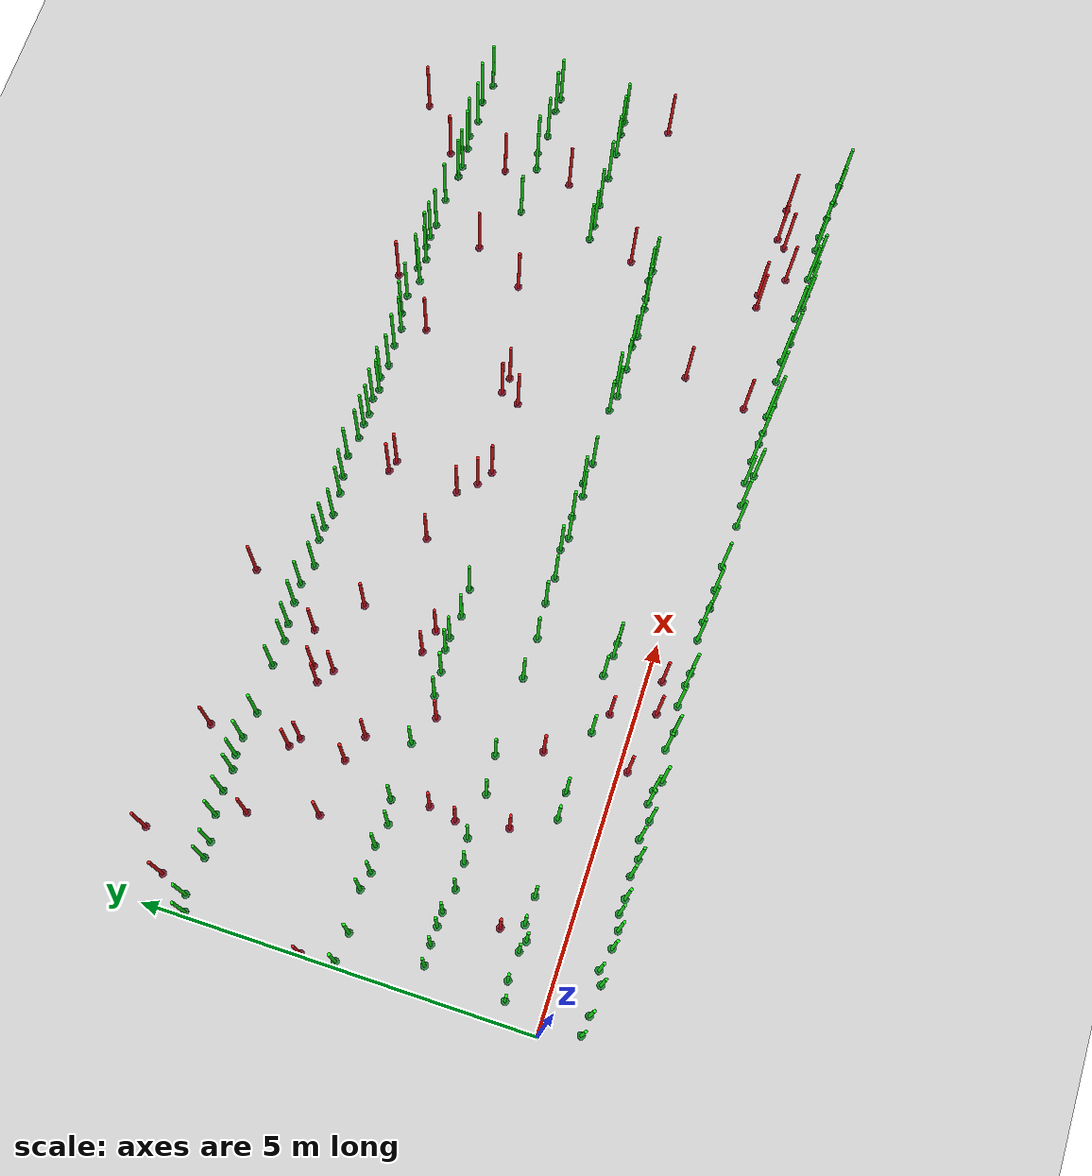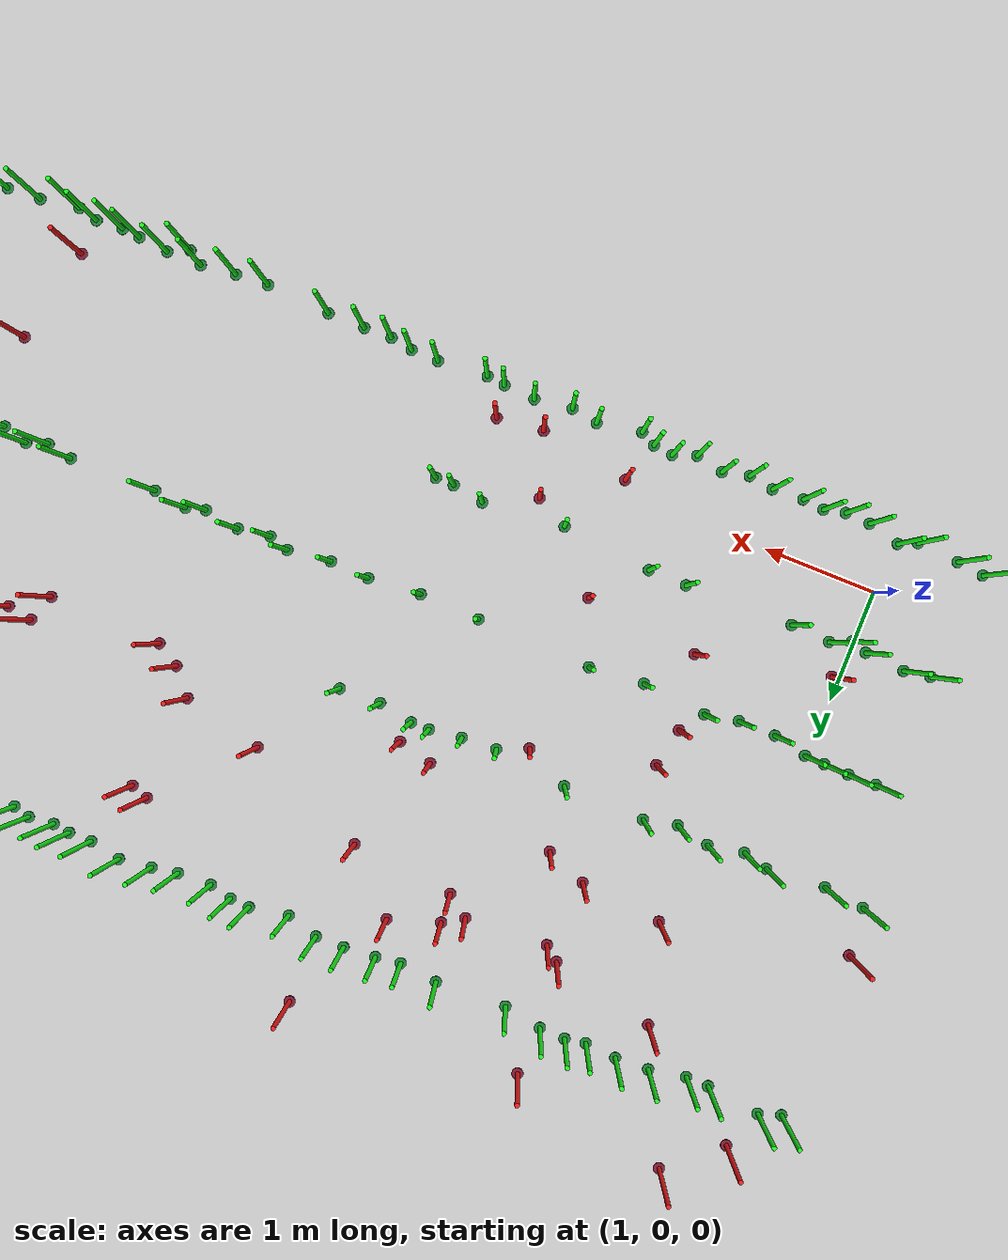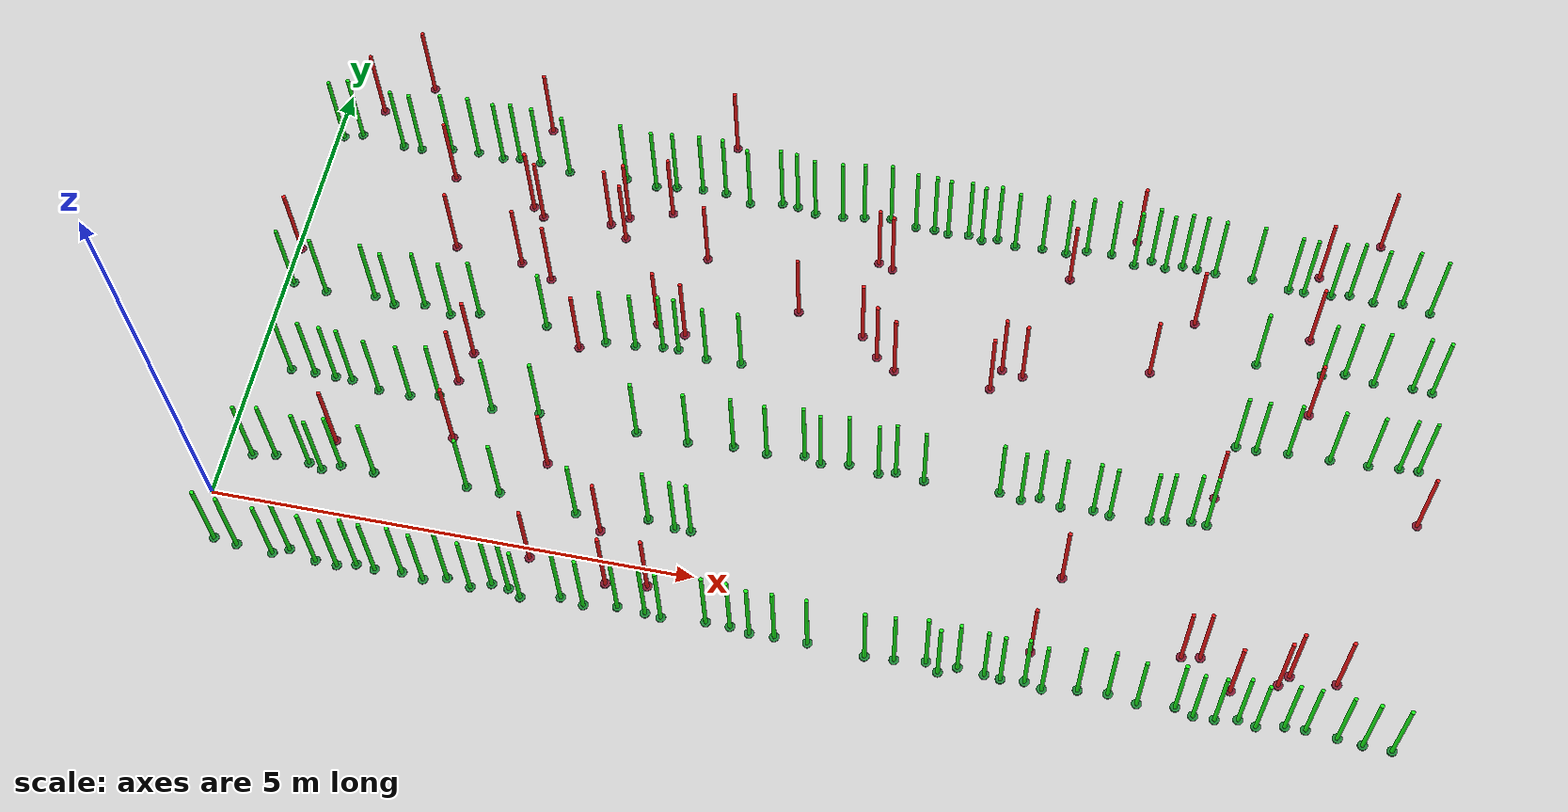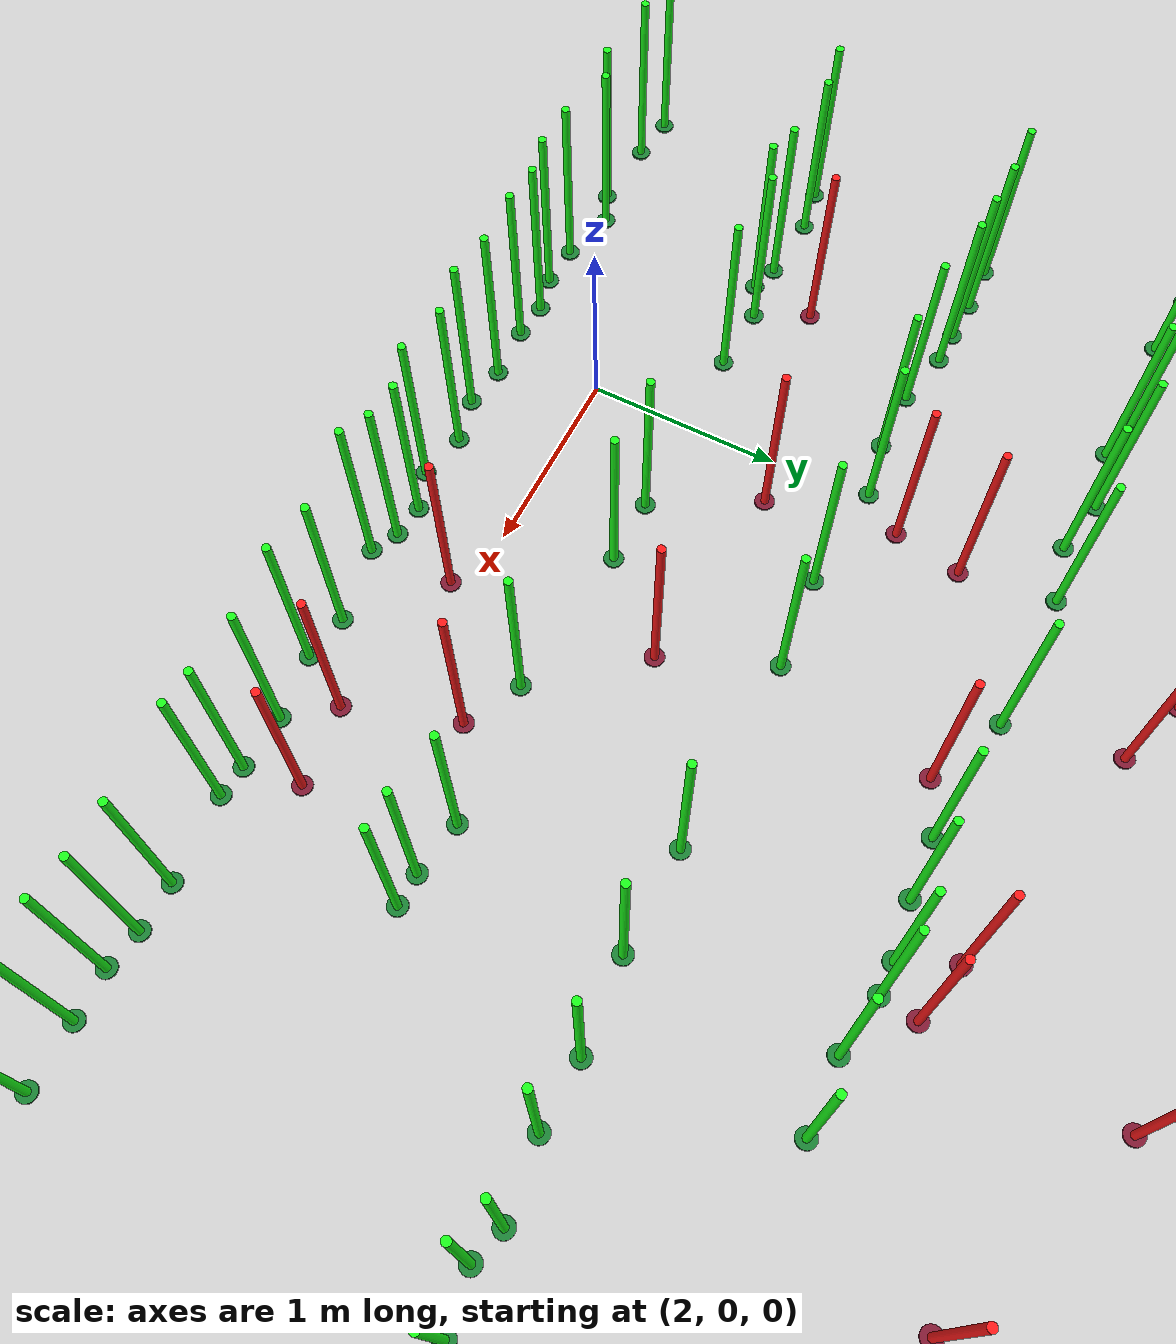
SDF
<sdf version="1.4">
 <world name="default">
  <include><uri>model://ground_plane</uri></include>
  <include><uri>model://sun</uri></include>
  <model name="plantgreen_0_3">
   <include><uri>model://plantgreen</uri></include>
   <pose>8.39856245610971 -0.4807476662383594 0 0 0 0</pose>
  </model>
  <model name="plantgreen_0_4">
   <include><uri>model://plantgreen</uri></include>
   <pose>4.777953573985738 -0.49077117577808715 0 0 0 0</pose>
  </model>
  <model name="plantgreen_0_8">
   <include><uri>model://plantgreen</uri></include>
   <pose>5.6681007058606765 -0.49095150510172536 0 0 0 0</pose>
  </model>
  <model name="plantgreen_0_9">
   <include><uri>model://plantgreen</uri></include>
   <pose>3.756947308085751 -0.4669846699011406 0 0 0 0</pose>
  </model>
  <model name="plantgreen_0_11">
   <include><uri>model://plantgreen</uri></include>
   <pose>1.2553774150021098 -0.5410058900769742 0 0 0 0</pose>
  </model>
  <model name="plantgreen_0_12">
   <include><uri>model://plantgreen</uri></include>
   <pose>0.184738686686578 -0.4900534193792378 0 0 0 0</pose>
  </model>
  <model name="plantgreen_0_15">
   <include><uri>model://plantgreen</uri></include>
   <pose>3.0505982982683975 -0.4554522030174123 0 0 0 0</pose>
  </model>
  <model name="plantgreen_0_20">
   <include><uri>model://plantgreen</uri></include>
   <pose>10.928086680414772 -0.4640705573655014 0 0 0 0</pose>
  </model>
  <model name="plantgreen_0_21">
   <include><uri>model://plantgreen</uri></include>
   <pose>4.330352886810834 -0.4575994621631966 0 0 0 0</pose>
  </model>
  <model name="plantgreen_0_22">
   <include><uri>model://plantgreen</uri></include>
   <pose>11.963182784833304 -0.5190679712958624 0 0 0 0</pose>
  </model>
  <model name="plantgreen_0_23">
   <include><uri>model://plantgreen</uri></include>
   <pose>6.248799093181534 -0.4829120567881093 0 0 0 0</pose>
  </model>
  <model name="plantgreen_0_24">
   <include><uri>model://plantgreen</uri></include>
   <pose>7.424294728396721 -0.458322404561467 0 0 0 0</pose>
  </model>
  <model name="plantgreen_0_25">
   <include><uri>model://plantgreen</uri></include>
   <pose>2.3648847800552737 -0.536225432818001 0 0 0 0</pose>
  </model>
  <model name="plantgreen_0_26">
   <include><uri>model://plantgreen</uri></include>
   <pose>5.222326706566874 -0.4547527973212203 0 0 0 0</pose>
  </model>
  <model name="plantgreen_0_27">
   <include><uri>model://plantgreen</uri></include>
   <pose>0.9660024674559231 -0.46920312247077667 0 0 0 0</pose>
  </model>
  <model name="plantgreen_0_29">
   <include><uri>model://plantgreen</uri></include>
   <pose>2.8494490534128225 -0.5298505835202784 0 0 0 0</pose>
  </model>
  <model name="plantgreen_0_30">
   <include><uri>model://plantgreen</uri></include>
   <pose>3.3627077185650527 -0.5403709632884144 0 0 0 0</pose>
  </model>
  <model name="plantgreen_0_32">
   <include><uri>model://plantgreen</uri></include>
   <pose>8.916906849624691 -0.4704890661441509 0 0 0 0</pose>
  </model>
  <model name="plantgreen_0_34">
   <include><uri>model://plantgreen</uri></include>
   <pose>1.6691414771721673 -0.5040041812483311 0 0 0 0</pose>
  </model>
  <model name="plantgreen_0_37">
   <include><uri>model://plantgreen</uri></include>
   <pose>1.4798980344004815 -0.5497533237693103 0 0 0 0</pose>
  </model>
  <model name="plantgreen_0_42">
   <include><uri>model://plantgreen</uri></include>
   <pose>0.42869831111589374 -0.5176122068429523 0 0 0 0</pose>
  </model>
  <model name="plantgreen_0_43">
   <include><uri>model://plantgreen</uri></include>
   <pose>8.57407877382872 -0.525318475388357 0 0 0 0</pose>
  </model>
  <model name="plantgreen_0_44">
   <include><uri>model://plantgreen</uri></include>
   <pose>11.680260472352233 -0.5133142259705469 0 0 0 0</pose>
  </model>
  <model name="plantgreen_0_47">
   <include><uri>model://plantgreen</uri></include>
   <pose>9.497905810052366 -0.5021001670326196 0 0 0 0</pose>
  </model>
  <model name="plantgreen_0_48">
   <include><uri>model://plantgreen</uri></include>
   <pose>7.734740965060566 -0.457814429661794 0 0 0 0</pose>
  </model>
  <model name="plantgreen_0_49">
   <include><uri>model://plantgreen</uri></include>
   <pose>2.1409984198528047 -0.5029124128781308 0 0 0 0</pose>
  </model>
  <model name="plantgreen_0_51">
   <include><uri>model://plantgreen</uri></include>
   <pose>10.47999301080418 -0.4809167132342663 0 0 0 0</pose>
  </model>
  <model name="plantgreen_0_52">
   <include><uri>model://plantgreen</uri></include>
   <pose>1.8615472164432156 -0.5207023336735279 0 0 0 0</pose>
  </model>
  <model name="plantgreen_0_55">
   <include><uri>model://plantgreen</uri></include>
   <pose>11.128322812568625 -0.4616574479074223 0 0 0 0</pose>
  </model>
  <model name="plantgreen_0_56">
   <include><uri>model://plantgreen</uri></include>
   <pose>5.917223989920453 -0.48147426119362563 0 0 0 0</pose>
  </model>
  <model name="plantgreen_0_57">
   <include><uri>model://plantgreen</uri></include>
   <pose>4.614604485108509 -0.4746982328904414 0 0 0 0</pose>
  </model>
  <model name="plantgreen_0_62">
   <include><uri>model://plantgreen</uri></include>
   <pose>0.8075430381808635 -0.5412623698312793 0 0 0 0</pose>
  </model>
  <model name="plantgreen_0_64">
   <include><uri>model://plantgreen</uri></include>
   <pose>9.868366793807027 -0.46425498429950773 0 0 0 0</pose>
  </model>
  <model name="plantgreen_0_65">
   <include><uri>model://plantgreen</uri></include>
   <pose>10.654446993426122 -0.5171095993312025 0 0 0 0</pose>
  </model>
  <model name="plantgreen_0_66">
   <include><uri>model://plantgreen</uri></include>
   <pose>5.468027226548461 -0.457036441289032 0 0 0 0</pose>
  </model>
  <model name="plantgreen_0_68">
   <include><uri>model://plantgreen</uri></include>
   <pose>7.113050635886084 -0.4968313235749303 0 0 0 0</pose>
  </model>
  <model name="plantgreen_0_71">
   <include><uri>model://plantgreen</uri></include>
   <pose>6.82281687806284 -0.515177774890408 0 0 0 0</pose>
  </model>
  <model name="plantgreen_0_74">
   <include><uri>model://plantgreen</uri></include>
   <pose>3.2269489090044927 -0.4734927408645603 0 0 0 0</pose>
  </model>
  <model name="plantgreen_0_77">
   <include><uri>model://plantgreen</uri></include>
   <pose>11.43576111168818 -0.48845529415821487 0 0 0 0</pose>
  </model>
  <model name="plantgreen_0_78">
   <include><uri>model://plantgreen</uri></include>
   <pose>8.163574360863382 -0.49697411753368015 0 0 0 0</pose>
  </model>
  <model name="plantgreen_0_81">
   <include><uri>model://plantgreen</uri></include>
   <pose>9.211073864658873 -0.4538122500581919 0 0 0 0</pose>
  </model>
  <model name="plantgreen_0_85">
   <include><uri>model://plantgreen</uri></include>
   <pose>10.254978399363617 -0.5220918252347012 0 0 0 0</pose>
  </model>
  <model name="plantgreen_0_91">
   <include><uri>model://plantgreen</uri></include>
   <pose>2.5991629162950365 -0.4788294783591661 0 0 0 0</pose>
  </model>
  <model name="plantgreen_0_93">
   <include><uri>model://plantgreen</uri></include>
   <pose>3.995497720900934 -0.50583176112882 0 0 0 0</pose>
  </model>
  <model name="plantgreen_0_94">
   <include><uri>model://plantgreen</uri></include>
   <pose>8.002619280638593 -0.48302579742815444 0 0 0 0</pose>
  </model>
  <model name="plantgreen_0_98">
   <include><uri>model://plantgreen</uri></include>
   <pose>7.553341881410103 -0.5423620888152115 0 0 0 0</pose>
  </model>
  <model name="plantgreen_0_99">
   <include><uri>model://plantgreen</uri></include>
   <pose>10.047175083046378 -0.5245211111276955 0 0 0 0</pose>
  </model>
  <model name="plantgreen_1_0">
   <include><uri>model://plantgreen</uri></include>
   <pose>4.414954240005867 0.5328842082654425 0 0 0 0</pose>
  </model>
  <model name="plantgreen_1_3">
   <include><uri>model://plantgreen</uri></include>
   <pose>1.1991338489163894 0.5329145601878675 0 0 0 0</pose>
  </model>
  <model name="plantgreen_1_16">
   <include><uri>model://plantgreen</uri></include>
   <pose>4.6982836953873095 0.4877655279501917 0 0 0 0</pose>
  </model>
  <model name="plantgreen_1_19">
   <include><uri>model://plantgreen</uri></include>
   <pose>0.2765692165203393 0.48554151913036775 0 0 0 0</pose>
  </model>
  <model name="plantgreen_1_21">
   <include><uri>model://plantgreen</uri></include>
   <pose>0.8724238201949036 0.5020368217906758 0 0 0 0</pose>
  </model>
  <model name="plantgreen_1_24">
   <include><uri>model://plantgreen</uri></include>
   <pose>3.681353874365667 0.461056042330573 0 0 0 0</pose>
  </model>
  <model name="plantgreen_1_26">
   <include><uri>model://plantgreen</uri></include>
   <pose>2.5226632809276506 0.5399571197001156 0 0 0 0</pose>
  </model>
  <model name="plantgreen_1_28">
   <include><uri>model://plantgreen</uri></include>
   <pose>0.511923579949447 0.5253572031086955 0 0 0 0</pose>
  </model>
  <model name="plantgreen_1_35">
   <include><uri>model://plantgreen</uri></include>
   <pose>4.864326313821402 0.485425741909538 0 0 0 0</pose>
  </model>
  <model name="plantgreen_1_46">
   <include><uri>model://plantgreen</uri></include>
   <pose>2.8687835177081453 0.5389711063152655 0 0 0 0</pose>
  </model>
  <model name="plantgreen_1_67">
   <include><uri>model://plantgreen</uri></include>
   <pose>1.551992624932827 0.5183449589377942 0 0 0 0</pose>
  </model>
  <model name="plantgreen_1_96">
   <include><uri>model://plantgreen</uri></include>
   <pose>1.0178064168718497 0.4561838383885439 0 0 0 0</pose>
  </model>
  <model name="plantgreen_2_1">
   <include><uri>model://plantgreen</uri></include>
   <pose>2.5432402612814267 1.4606593394839273 0 0 0 0</pose>
  </model>
  <model name="plantgreen_2_3">
   <include><uri>model://plantgreen</uri></include>
   <pose>1.664965531505902 1.453889381631182 0 0 0 0</pose>
  </model>
  <model name="plantgreen_2_4">
   <include><uri>model://plantgreen</uri></include>
   <pose>1.96340525716103 1.5101873393029328 0 0 0 0</pose>
  </model>
  <model name="plantgreen_2_8">
   <include><uri>model://plantgreen</uri></include>
   <pose>8.799938867952859 1.4818626845075942 0 0 0 0</pose>
  </model>
  <model name="plantgreen_2_9">
   <include><uri>model://plantgreen</uri></include>
   <pose>0.621528002636354 1.5300749117123214 0 0 0 0</pose>
  </model>
  <model name="plantgreen_2_10">
   <include><uri>model://plantgreen</uri></include>
   <pose>0.36756820736811024 1.5236361638980267 0 0 0 0</pose>
  </model>
  <model name="plantgreen_2_11">
   <include><uri>model://plantgreen</uri></include>
   <pose>4.612088772183467 1.4632494560655829 0 0 0 0</pose>
  </model>
  <model name="plantgreen_2_13">
   <include><uri>model://plantgreen</uri></include>
   <pose>7.84027619015091 1.502027258845042 0 0 0 0</pose>
  </model>
  <model name="plantgreen_2_17">
   <include><uri>model://plantgreen</uri></include>
   <pose>6.767257850994085 1.5276695942858942 0 0 0 0</pose>
  </model>
  <model name="plantgreen_2_19">
   <include><uri>model://plantgreen</uri></include>
   <pose>8.06498112814259 1.4592974452658387 0 0 0 0</pose>
  </model>
  <model name="plantgreen_2_22">
   <include><uri>model://plantgreen</uri></include>
   <pose>1.3315799049660793 1.455093349107417 0 0 0 0</pose>
  </model>
  <model name="plantgreen_2_25">
   <include><uri>model://plantgreen</uri></include>
   <pose>0.8466825974868614 1.5234321252185725 0 0 0 0</pose>
  </model>
  <model name="plantgreen_2_29">
   <include><uri>model://plantgreen</uri></include>
   <pose>6.2835245313419525 1.5267982746605107 0 0 0 0</pose>
  </model>
  <model name="plantgreen_2_32">
   <include><uri>model://plantgreen</uri></include>
   <pose>1.026927625919205 1.5186818181003496 0 0 0 0</pose>
  </model>
  <model name="plantgreen_2_36">
   <include><uri>model://plantgreen</uri></include>
   <pose>5.819001684096175 1.5369961081074557 0 0 0 0</pose>
  </model>
  <model name="plantgreen_2_38">
   <include><uri>model://plantgreen</uri></include>
   <pose>4.0700333663502315 1.4771015976901154 0 0 0 0</pose>
  </model>
  <model name="plantgreen_2_41">
   <include><uri>model://plantgreen</uri></include>
   <pose>9.787229701224573 1.5458372534287033 0 0 0 0</pose>
  </model>
  <model name="plantgreen_2_42">
   <include><uri>model://plantgreen</uri></include>
   <pose>7.06404396122971 1.4885196937972829 0 0 0 0</pose>
  </model>
  <model name="plantgreen_2_43">
   <include><uri>model://plantgreen</uri></include>
   <pose>3.034983417495163 1.5048036812184002 0 0 0 0</pose>
  </model>
  <model name="plantgreen_2_44">
   <include><uri>model://plantgreen</uri></include>
   <pose>5.997566921694361 1.4841977534244286 0 0 0 0</pose>
  </model>
  <model name="plantgreen_2_45">
   <include><uri>model://plantgreen</uri></include>
   <pose>8.96952418973328 1.454757749619192 0 0 0 0</pose>
  </model>
  <model name="plantgreen_2_54">
   <include><uri>model://plantgreen</uri></include>
   <pose>9.941929010944106 1.533402056147057 0 0 0 0</pose>
  </model>
  <model name="plantgreen_2_59">
   <include><uri>model://plantgreen</uri></include>
   <pose>6.596015893535201 1.4805653375079737 0 0 0 0</pose>
  </model>
  <model name="plantgreen_2_61">
   <include><uri>model://plantgreen</uri></include>
   <pose>8.248971188846907 1.520336469447901 0 0 0 0</pose>
  </model>
  <model name="plantgreen_2_67">
   <include><uri>model://plantgreen</uri></include>
   <pose>9.373944479637187 1.4793741363148947 0 0 0 0</pose>
  </model>
  <model name="plantgreen_2_71">
   <include><uri>model://plantgreen</uri></include>
   <pose>5.433156979165873 1.4897931057651972 0 0 0 0</pose>
  </model>
  <model name="plantgreen_2_81">
   <include><uri>model://plantgreen</uri></include>
   <pose>9.525903709312539 1.5066885632625617 0 0 0 0</pose>
  </model>
  <model name="plantgreen_2_83">
   <include><uri>model://plantgreen</uri></include>
   <pose>8.469653114613513 1.4585652409397662 0 0 0 0</pose>
  </model>
  <model name="plantgreen_2_86">
   <include><uri>model://plantgreen</uri></include>
   <pose>5.083620196732991 1.5034488361563945 0 0 0 0</pose>
  </model>
  <model name="plantgreen_3_3">
   <include><uri>model://plantgreen</uri></include>
   <pose>4.277837216084857 2.516692855492804 0 0 0 0</pose>
  </model>
  <model name="plantgreen_3_7">
   <include><uri>model://plantgreen</uri></include>
   <pose>10.667239596451678 2.5002261577689704 0 0 0 0</pose>
  </model>
  <model name="plantgreen_3_10">
   <include><uri>model://plantgreen</uri></include>
   <pose>1.1991457730328419 2.488393081936319 0 0 0 0</pose>
  </model>
  <model name="plantgreen_3_11">
   <include><uri>model://plantgreen</uri></include>
   <pose>10.340010929883611 2.4744027241809188 0 0 0 0</pose>
  </model>
  <model name="plantgreen_3_15">
   <include><uri>model://plantgreen</uri></include>
   <pose>11.482673285541425 2.514906516881652 0 0 0 0</pose>
  </model>
  <model name="plantgreen_3_19">
   <include><uri>model://plantgreen</uri></include>
   <pose>10.133616953195093 2.4802359275965724 0 0 0 0</pose>
  </model>
  <model name="plantgreen_3_22">
   <include><uri>model://plantgreen</uri></include>
   <pose>3.823284351817391 2.476629813527345 0 0 0 0</pose>
  </model>
  <model name="plantgreen_3_25">
   <include><uri>model://plantgreen</uri></include>
   <pose>0.9742442609025403 2.5454828628301596 0 0 0 0</pose>
  </model>
  <model name="plantgreen_3_27">
   <include><uri>model://plantgreen</uri></include>
   <pose>11.796161881952571 2.5436653074160263 0 0 0 0</pose>
  </model>
  <model name="plantgreen_3_31">
   <include><uri>model://plantgreen</uri></include>
   <pose>2.1160799006793214 2.549554383894342 0 0 0 0</pose>
  </model>
  <model name="plantgreen_3_32">
   <include><uri>model://plantgreen</uri></include>
   <pose>2.8512264557594174 2.5353425656167614 0 0 0 0</pose>
  </model>
  <model name="plantgreen_3_34">
   <include><uri>model://plantgreen</uri></include>
   <pose>1.8178744135099845 2.4814704715996885 0 0 0 0</pose>
  </model>
  <model name="plantgreen_3_36">
   <include><uri>model://plantgreen</uri></include>
   <pose>11.092946916193577 2.5064910580891087 0 0 0 0</pose>
  </model>
  <model name="plantgreen_3_37">
   <include><uri>model://plantgreen</uri></include>
   <pose>0.4464003654103432 2.504901590805653 0 0 0 0</pose>
  </model>
  <model name="plantgreen_3_42">
   <include><uri>model://plantgreen</uri></include>
   <pose>1.5206134480085898 2.544066955252676 0 0 0 0</pose>
  </model>
  <model name="plantgreen_3_50">
   <include><uri>model://plantgreen</uri></include>
   <pose>4.587025554958812 2.4618601115050596 0 0 0 0</pose>
  </model>
  <model name="plantgreen_3_51">
   <include><uri>model://plantgreen</uri></include>
   <pose>4.956408117886199 2.475754666006801 0 0 0 0</pose>
  </model>
  <model name="plantgreen_3_60">
   <include><uri>model://plantgreen</uri></include>
   <pose>11.991139051209748 2.549063595949476 0 0 0 0</pose>
  </model>
  <model name="plantgreen_3_72">
   <include><uri>model://plantgreen</uri></include>
   <pose>4.112552029133415 2.515670028160847 0 0 0 0</pose>
  </model>
  <model name="plantgreen_3_87">
   <include><uri>model://plantgreen</uri></include>
   <pose>3.5114560335784804 2.4586973032342976 0 0 0 0</pose>
  </model>
  <model name="plantgreen_3_91">
   <include><uri>model://plantgreen</uri></include>
   <pose>0.07779016360215385 2.5476132426165385 0 0 0 0</pose>
  </model>
  <model name="plantgreen_4_5">
   <include><uri>model://plantgreen</uri></include>
   <pose>12.062099461140821 3.493265019478024 0 0 0 0</pose>
  </model>
  <model name="plantgreen_4_20">
   <include><uri>model://plantgreen</uri></include>
   <pose>11.155621752750186 3.54342588514192 0 0 0 0</pose>
  </model>
  <model name="plantgreen_4_29">
   <include><uri>model://plantgreen</uri></include>
   <pose>11.455221212481966 3.491506001996641 0 0 0 0</pose>
  </model>
  <model name="plantgreen_4_36">
   <include><uri>model://plantgreen</uri></include>
   <pose>10.917808116622249 3.483074744850096 0 0 0 0</pose>
  </model>
  <model name="plantgreen_4_48">
   <include><uri>model://plantgreen</uri></include>
   <pose>10.235824040137073 3.4859418244092923 0 0 0 0</pose>
  </model>
  <model name="plantgreen_4_87">
   <include><uri>model://plantgreen</uri></include>
   <pose>11.859719474087255 3.506504544959963 0 0 0 0</pose>
  </model>
  <model name="plantgreen_5_0">
   <include><uri>model://plantgreen</uri></include>
   <pose>11.371392920505238 4.476828115568693 0 0 0 0</pose>
  </model>
  <model name="plantgreen_5_1">
   <include><uri>model://plantgreen</uri></include>
   <pose>6.172037990506799 4.544625818193591 0 0 0 0</pose>
  </model>
  <model name="plantgreen_5_2">
   <include><uri>model://plantgreen</uri></include>
   <pose>7.538574812038745 4.453843584213877 0 0 0 0</pose>
  </model>
  <model name="plantgreen_5_3">
   <include><uri>model://plantgreen</uri></include>
   <pose>4.350899292227151 4.531631844001614 0 0 0 0</pose>
  </model>
  <model name="plantgreen_5_4">
   <include><uri>model://plantgreen</uri></include>
   <pose>8.998447583230757 4.547521240008861 0 0 0 0</pose>
  </model>
  <model name="plantgreen_5_5">
   <include><uri>model://plantgreen</uri></include>
   <pose>10.081391984041982 4.519044237050772 0 0 0 0</pose>
  </model>
  <model name="plantgreen_5_6">
   <include><uri>model://plantgreen</uri></include>
   <pose>7.83152316122904 4.4778500204186615 0 0 0 0</pose>
  </model>
  <model name="plantgreen_5_8">
   <include><uri>model://plantgreen</uri></include>
   <pose>1.5719264151683232 4.539638410157584 0 0 0 0</pose>
  </model>
  <model name="plantgreen_5_11">
   <include><uri>model://plantgreen</uri></include>
   <pose>9.686267617523983 4.517873007270836 0 0 0 0</pose>
  </model>
  <model name="plantgreen_5_12">
   <include><uri>model://plantgreen</uri></include>
   <pose>3.247799103509777 4.508668958406151 0 0 0 0</pose>
  </model>
  <model name="plantgreen_5_13">
   <include><uri>model://plantgreen</uri></include>
   <pose>5.35455919179402 4.455482571008775 0 0 0 0</pose>
  </model>
  <model name="plantgreen_5_16">
   <include><uri>model://plantgreen</uri></include>
   <pose>2.2696674915998276 4.54165626672292 0 0 0 0</pose>
  </model>
  <model name="plantgreen_5_20">
   <include><uri>model://plantgreen</uri></include>
   <pose>5.884689444422203 4.507926958804125 0 0 0 0</pose>
  </model>
  <model name="plantgreen_5_21">
   <include><uri>model://plantgreen</uri></include>
   <pose>8.090177735267536 4.469298994476938 0 0 0 0</pose>
  </model>
  <model name="plantgreen_5_24">
   <include><uri>model://plantgreen</uri></include>
   <pose>3.5882608788524726 4.472442225896282 0 0 0 0</pose>
  </model>
  <model name="plantgreen_5_29">
   <include><uri>model://plantgreen</uri></include>
   <pose>8.569821771646517 4.5499748664958695 0 0 0 0</pose>
  </model>
  <model name="plantgreen_5_33">
   <include><uri>model://plantgreen</uri></include>
   <pose>3.8096345627465444 4.5047773423972135 0 0 0 0</pose>
  </model>
  <model name="plantgreen_5_34">
   <include><uri>model://plantgreen</uri></include>
   <pose>6.805161691292574 4.473948759713944 0 0 0 0</pose>
  </model>
  <model name="plantgreen_5_35">
   <include><uri>model://plantgreen</uri></include>
   <pose>10.475885811885263 4.464502034549261 0 0 0 0</pose>
  </model>
  <model name="plantgreen_5_37">
   <include><uri>model://plantgreen</uri></include>
   <pose>8.82421609191214 4.459036511581552 0 0 0 0</pose>
  </model>
  <model name="plantgreen_5_44">
   <include><uri>model://plantgreen</uri></include>
   <pose>7.340546690334252 4.503496277982922 0 0 0 0</pose>
  </model>
  <model name="plantgreen_5_48">
   <include><uri>model://plantgreen</uri></include>
   <pose>7.026869941331134 4.4984508707369155 0 0 0 0</pose>
  </model>
  <model name="plantgreen_5_49">
   <include><uri>model://plantgreen</uri></include>
   <pose>0.9435196020245923 4.464732850994794 0 0 0 0</pose>
  </model>
  <model name="plantgreen_5_50">
   <include><uri>model://plantgreen</uri></include>
   <pose>10.923400434049132 4.478363488016734 0 0 0 0</pose>
  </model>
  <model name="plantgreen_5_52">
   <include><uri>model://plantgreen</uri></include>
   <pose>11.117954862273274 4.516264740584957 0 0 0 0</pose>
  </model>
  <model name="plantgreen_5_57">
   <include><uri>model://plantgreen</uri></include>
   <pose>5.654612246603707 4.468330569249834 0 0 0 0</pose>
  </model>
  <model name="plantgreen_5_58">
   <include><uri>model://plantgreen</uri></include>
   <pose>0.2569018468895984 4.527287510727997 0 0 0 0</pose>
  </model>
  <model name="plantgreen_5_61">
   <include><uri>model://plantgreen</uri></include>
   <pose>2.614399200449011 4.481450800627397 0 0 0 0</pose>
  </model>
  <model name="plantgreen_5_62">
   <include><uri>model://plantgreen</uri></include>
   <pose>5.1539921341687025 4.502249577921125 0 0 0 0</pose>
  </model>
  <model name="plantgreen_5_67">
   <include><uri>model://plantgreen</uri></include>
   <pose>0.7402010932852782 4.467345059695367 0 0 0 0</pose>
  </model>
  <model name="plantgreen_5_68">
   <include><uri>model://plantgreen</uri></include>
   <pose>1.2727804230546813 4.525387993865345 0 0 0 0</pose>
  </model>
  <model name="plantgreen_5_69">
   <include><uri>model://plantgreen</uri></include>
   <pose>4.0957740201786965 4.528533245735971 0 0 0 0</pose>
  </model>
  <model name="plantgreen_5_70">
   <include><uri>model://plantgreen</uri></include>
   <pose>11.677264690161412 4.517298341487804 0 0 0 0</pose>
  </model>
  <model name="plantgreen_5_71">
   <include><uri>model://plantgreen</uri></include>
   <pose>2.039101245435007 4.548643273957826 0 0 0 0</pose>
  </model>
  <model name="plantgreen_5_73">
   <include><uri>model://plantgreen</uri></include>
   <pose>6.450421274252388 4.492114229309765 0 0 0 0</pose>
  </model>
  <model name="plantgreen_5_74">
   <include><uri>model://plantgreen</uri></include>
   <pose>6.65438650104559 4.494276591941342 0 0 0 0</pose>
  </model>
  <model name="plantgreen_5_75">
   <include><uri>model://plantgreen</uri></include>
   <pose>9.333436007173354 4.541671432150164 0 0 0 0</pose>
  </model>
  <model name="plantgreen_5_76">
   <include><uri>model://plantgreen</uri></include>
   <pose>4.634188401720568 4.452189196256568 0 0 0 0</pose>
  </model>
  <model name="plantgreen_5_77">
   <include><uri>model://plantgreen</uri></include>
   <pose>11.969480850197034 4.452672795919411 0 0 0 0</pose>
  </model>
  <model name="plantgreen_5_80">
   <include><uri>model://plantgreen</uri></include>
   <pose>10.637548380377048 4.460693901341957 0 0 0 0</pose>
  </model>
  <model name="plantgreen_5_81">
   <include><uri>model://plantgreen</uri></include>
   <pose>4.97968747793989 4.51400187250561 0 0 0 0</pose>
  </model>
  <model name="plantgreen_5_82">
   <include><uri>model://plantgreen</uri></include>
   <pose>9.491591975747108 4.534918414496526 0 0 0 0</pose>
  </model>
  <model name="plantgreen_5_86">
   <include><uri>model://plantgreen</uri></include>
   <pose>1.8552498303356368 4.5168757290466965 0 0 0 0</pose>
  </model>
  <model name="plantgreen_5_90">
   <include><uri>model://plantgreen</uri></include>
   <pose>9.15486718787607 4.482244033108639 0 0 0 0</pose>
  </model>
  <model name="plantgreen_5_91">
   <include><uri>model://plantgreen</uri></include>
   <pose>0.06169434556396736 4.463984703623404 0 0 0 0</pose>
  </model>
  <model name="plantgreen_5_92">
   <include><uri>model://plantgreen</uri></include>
   <pose>7.174053099753238 4.4608451359130745 0 0 0 0</pose>
  </model>
  <model name="plantgreen_5_98">
   <include><uri>model://plantgreen</uri></include>
   <pose>8.30183713155386 4.536845667418283 0 0 0 0</pose>
  </model>
  <model name="plantred_1">
   <include><uri>model://plantred</uri></include>
   <pose>0.8684631443019925 5.280960044521041 0 0 0 0</pose>
  </model>
  <model name="plantred_4">
   <include><uri>model://plantred</uri></include>
   <pose>7.641009786183564 2.916276278144192 0 0 0 0</pose>
  </model>
  <model name="plantred_5">
   <include><uri>model://plantred</uri></include>
   <pose>6.144774100700082 3.9663620661213725 0 0 0 0</pose>
  </model>
  <model name="plantred_6">
   <include><uri>model://plantred</uri></include>
   <pose>9.156159943271827 3.1788268223992224 0 0 0 0</pose>
  </model>
  <model name="plantred_7">
   <include><uri>model://plantred</uri></include>
   <pose>4.351427116828205 5.134428349251999 0 0 0 0</pose>
  </model>
  <model name="plantred_9">
   <include><uri>model://plantred</uri></include>
   <pose>4.303967022606478 2.7055438848409192 0 0 0 0</pose>
  </model>
  <model name="plantred_10">
   <include><uri>model://plantred</uri></include>
   <pose>0.03274094071105127 2.9716722396350006 0 0 0 0</pose>
  </model>
  <model name="plantred_12">
   <include><uri>model://plantred</uri></include>
   <pose>2.349562753509221 3.9616621114458788 0 0 0 0</pose>
  </model>
  <model name="plantred_13">
   <include><uri>model://plantred</uri></include>
   <pose>5.421396491770539 3.207771706254742 0 0 0 0</pose>
  </model>
  <model name="plantred_15">
   <include><uri>model://plantred</uri></include>
   <pose>6.2989227064774225 3.9150766345375825 0 0 0 0</pose>
  </model>
  <model name="plantred_17">
   <include><uri>model://plantred</uri></include>
   <pose>1.4152049810304712 4.1705003522274895 0 0 0 0</pose>
  </model>
  <model name="plantred_18">
   <include><uri>model://plantred</uri></include>
   <pose>10.82261688179609 -0.051780066665885166 0 0 0 0</pose>
  </model>
  <model name="plantred_20">
   <include><uri>model://plantred</uri></include>
   <pose>11.384333408698085 0.06320671537182143 0 0 0 0</pose>
  </model>
  <model name="plantred_21">
   <include><uri>model://plantred</uri></include>
   <pose>3.2166152575370504 3.904272069089572 0 0 0 0</pose>
  </model>
  <model name="plantred_22">
   <include><uri>model://plantred</uri></include>
   <pose>7.861142583212352 2.8800031545805354 0 0 0 0</pose>
  </model>
  <model name="plantred_23">
   <include><uri>model://plantred</uri></include>
   <pose>4.570420703642711 -0.18696698596026812 0 0 0 0</pose>
  </model>
  <model name="plantred_24">
   <include><uri>model://plantred</uri></include>
   <pose>10.048163391310824 0.0943379298410223 0 0 0 0</pose>
  </model>
  <model name="plantred_25">
   <include><uri>model://plantred</uri></include>
   <pose>2.302206030998624 4.9782357842769365 0 0 0 0</pose>
  </model>
  <model name="plantred_26">
   <include><uri>model://plantred</uri></include>
   <pose>9.984931181558954 1.8514145489996958 0 0 0 0</pose>
  </model>
  <model name="plantred_27">
   <include><uri>model://plantred</uri></include>
   <pose>9.86359352650993 0.06524519164343001 0 0 0 0</pose>
  </model>
  <model name="plantred_30">
   <include><uri>model://plantred</uri></include>
   <pose>10.921631939707805 0.061607057246368335 0 0 0 0</pose>
  </model>
  <model name="plantred_33">
   <include><uri>model://plantred</uri></include>
   <pose>2.3956780999847824 3.245582687842929 0 0 0 0</pose>
  </model>
  <model name="plantred_34">
   <include><uri>model://plantred</uri></include>
   <pose>10.758228337174502 3.883245880977027 0 0 0 0</pose>
  </model>
  <model name="plantred_39">
   <include><uri>model://plantred</uri></include>
   <pose>10.830102642349487 2.988252751794829 0 0 0 0</pose>
  </model>
  <model name="plantred_41">
   <include><uri>model://plantred</uri></include>
   <pose>3.41561908790631 3.7604391039174283 0 0 0 0</pose>
  </model>
  <model name="plantred_42">
   <include><uri>model://plantred</uri></include>
   <pose>1.66032660360787 3.311765053507786 0 0 0 0</pose>
  </model>
  <model name="plantred_43">
   <include><uri>model://plantred</uri></include>
   <pose>2.4793384732651025 3.858398372233683 0 0 0 0</pose>
  </model>
  <model name="plantred_44">
   <include><uri>model://plantred</uri></include>
   <pose>3.345784537491098 -0.10511509565450392 0 0 0 0</pose>
  </model>
  <model name="plantred_45">
   <include><uri>model://plantred</uri></include>
   <pose>7.5526213726084395 2.6695811794204793 0 0 0 0</pose>
  </model>
  <model name="plantred_47">
   <include><uri>model://plantred</uri></include>
   <pose>3.9948502037198077 2.7817828451267266 0 0 0 0</pose>
  </model>
  <model name="plantred_53">
   <include><uri>model://plantred</uri></include>
   <pose>2.2341465532493334 1.0615745918964672 0 0 0 0</pose>
  </model>
  <model name="plantred_54">
   <include><uri>model://plantred</uri></include>
   <pose>10.37359105929535 -0.19627470902087213 0 0 0 0</pose>
  </model>
  <model name="plantred_59">
   <include><uri>model://plantred</uri></include>
   <pose>2.115093594414477 1.718703959563255 0 0 0 0</pose>
  </model>
  <model name="plantred_60">
   <include><uri>model://plantred</uri></include>
   <pose>3.396451282302129 4.018407182734812 0 0 0 0</pose>
  </model>
  <model name="plantred_61">
   <include><uri>model://plantred</uri></include>
   <pose>0.40609765637705797 4.881130209509593 0 0 0 0</pose>
  </model>
  <model name="plantred_63">
   <include><uri>model://plantred</uri></include>
   <pose>12.021083264021751 1.9286278016789036 0 0 0 0</pose>
  </model>
  <model name="plantred_66">
   <include><uri>model://plantred</uri></include>
   <pose>6.3318335060641555 2.8201499794773444 0 0 0 0</pose>
  </model>
  <model name="plantred_67">
   <include><uri>model://plantred</uri></include>
   <pose>6.539402154223509 2.694426763453923 0 0 0 0</pose>
  </model>
  <model name="plantred_68">
   <include><uri>model://plantred</uri></include>
   <pose>3.9699105824098413 0.315557731094512 0 0 0 0</pose>
  </model>
  <model name="plantred_69">
   <include><uri>model://plantred</uri></include>
   <pose>8.599235221761234 0.6819446057525217 0 0 0 0</pose>
  </model>
  <model name="plantred_70">
   <include><uri>model://plantred</uri></include>
   <pose>1.0662189911571696 0.8010286191075098 0 0 0 0</pose>
  </model>
  <model name="plantred_71">
   <include><uri>model://plantred</uri></include>
   <pose>8.176190802590932 4.148949341900693 0 0 0 0</pose>
  </model>
  <model name="plantred_74">
   <include><uri>model://plantred</uri></include>
   <pose>9.544757420150363 3.8578663665931083 0 0 0 0</pose>
  </model>
  <model name="plantred_78">
   <include><uri>model://plantred</uri></include>
   <pose>3.842081169522016 4.165600984051009 0 0 0 0</pose>
  </model>
  <model name="plantred_79">
   <include><uri>model://plantred</uri></include>
   <pose>4.337359656625278 3.670379157960851 0 0 0 0</pose>
  </model>
  <model name="plantred_80">
   <include><uri>model://plantred</uri></include>
   <pose>4.154383662657998 -0.2365363344745574 0 0 0 0</pose>
  </model>
  <model name="plantred_84">
   <include><uri>model://plantred</uri></include>
   <pose>6.140648998093407 3.041323563702833 0 0 0 0</pose>
  </model>
  <model name="plantred_86">
   <include><uri>model://plantred</uri></include>
   <pose>10.782832227899371 4.677412848511895 0 0 0 0</pose>
  </model>
  <model name="plantred_87">
   <include><uri>model://plantred</uri></include>
   <pose>2.755207271186466 3.104585907199911 0 0 0 0</pose>
  </model>
  <model name="plantred_88">
   <include><uri>model://plantred</uri></include>
   <pose>3.262130980918168 0.9535601686674702 0 0 0 0</pose>
  </model>
  <model name="plantred_91">
   <include><uri>model://plantred</uri></include>
   <pose>8.409545757740034 -0.1649381939338325 0 0 0 0</pose>
  </model>
  <model name="plantred_95">
   <include><uri>model://plantred</uri></include>
   <pose>3.2484565947850372 2.345339584443325 0 0 0 0</pose>
  </model>
  <model name="plantred_96">
   <include><uri>model://plantred</uri></include>
   <pose>11.392628395007911 5.1914530505954835 0 0 0 0</pose>
  </model>
  <model name="plantred_97">
   <include><uri>model://plantred</uri></include>
   <pose>2.1824830912529265 2.069475370636699 0 0 0 0</pose>
  </model>
  <model name="plantred_100">
   <include><uri>model://plantred</uri></include>
   <pose>8.820647398196305 4.756075917517434 0 0 0 0</pose>
  </model>
 </world>
</sdf>
